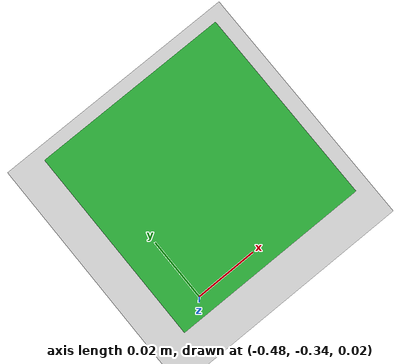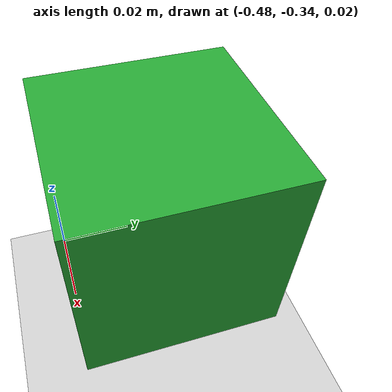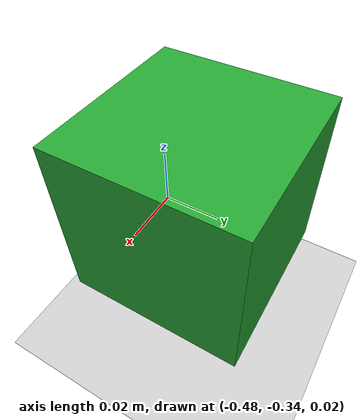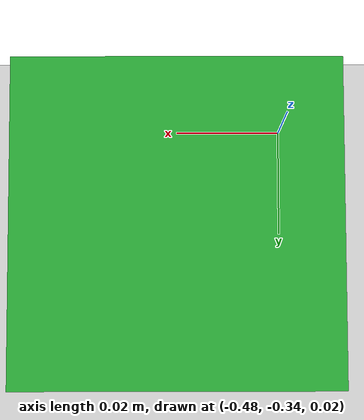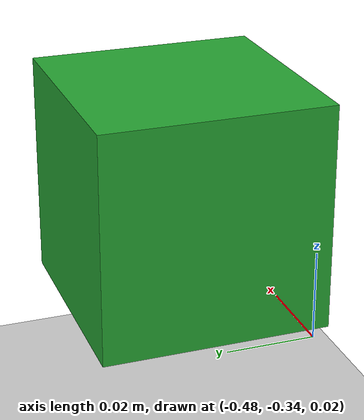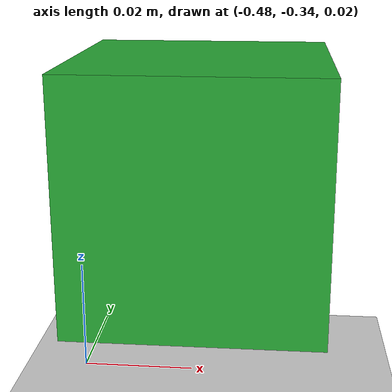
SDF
<?xml version="1.0" ?>
<sdf version="1.4">
  <world name="default">
    <include>
      <uri>model://ground_plane</uri>
    </include>
    <include>
      <uri>model://sun</uri>
    </include>

    <physics type='ode'>
      <max_step_size>0.001</max_step_size>
      <real_time_factor>1</real_time_factor>
      <real_time_update_rate>1000</real_time_update_rate>
      <gravity>0 0 -9.81</gravity>
    </physics>

 <model name='box'>
      <pose frame=''>-0.46 -0.316 0.05 0 0 0</pose>
      <link name='box'>
        <inertial>
          <mass>1</mass>
          <inertia>
            <ixx>0.166667</ixx>
            <ixy>0</ixy>
            <ixz>0</ixz>
            <iyy>0.166667</iyy>
            <iyz>0</iyz>
            <izz>0.166667</izz>
          </inertia>
        </inertial>
        <collision name='collision'>
          <geometry>
            <box>
              <size>0.05 0.05 0.05</size>
            </box>
          </geometry>
          <max_contacts>10</max_contacts>
          <surface>
            <contact>
              <ode/>
            </contact>
            <bounce/>
            <friction>
              <torsional>
                <ode/>
              </torsional>
            <ode/>
            </friction>
          </surface>

        </collision>
        <visual name='visual'>
          <geometry>
            <box>
              <size>0.05 0.05 0.05</size>
            </box>
          </geometry>
          <material>
            <script>
              <name>Gazebo/Green</name>
              <uri>file://media/materials/scripts/gazebo.material</uri>
            </script>
          </material>
        </visual>
        <self_collide>1</self_collide>
        <kinematic>0</kinematic>
      </link>
    </model>

  </world>
</sdf>
